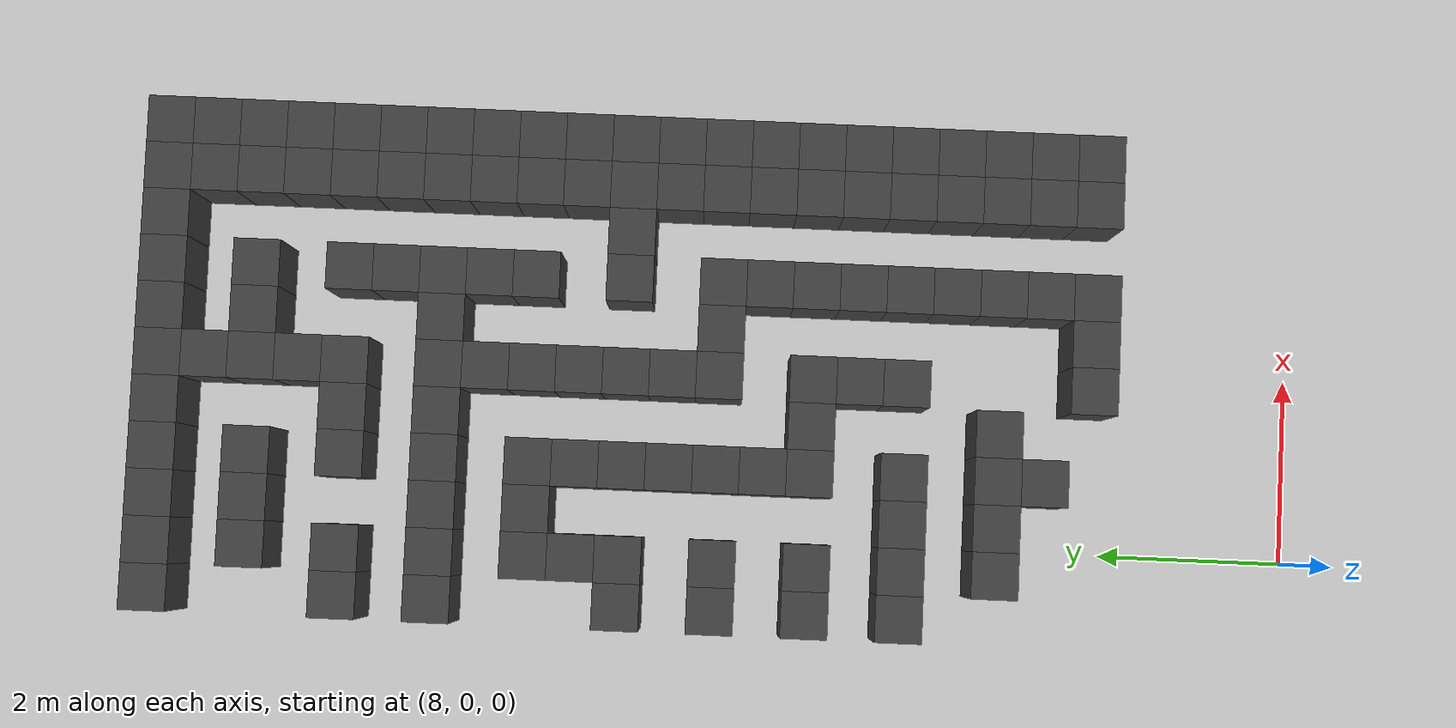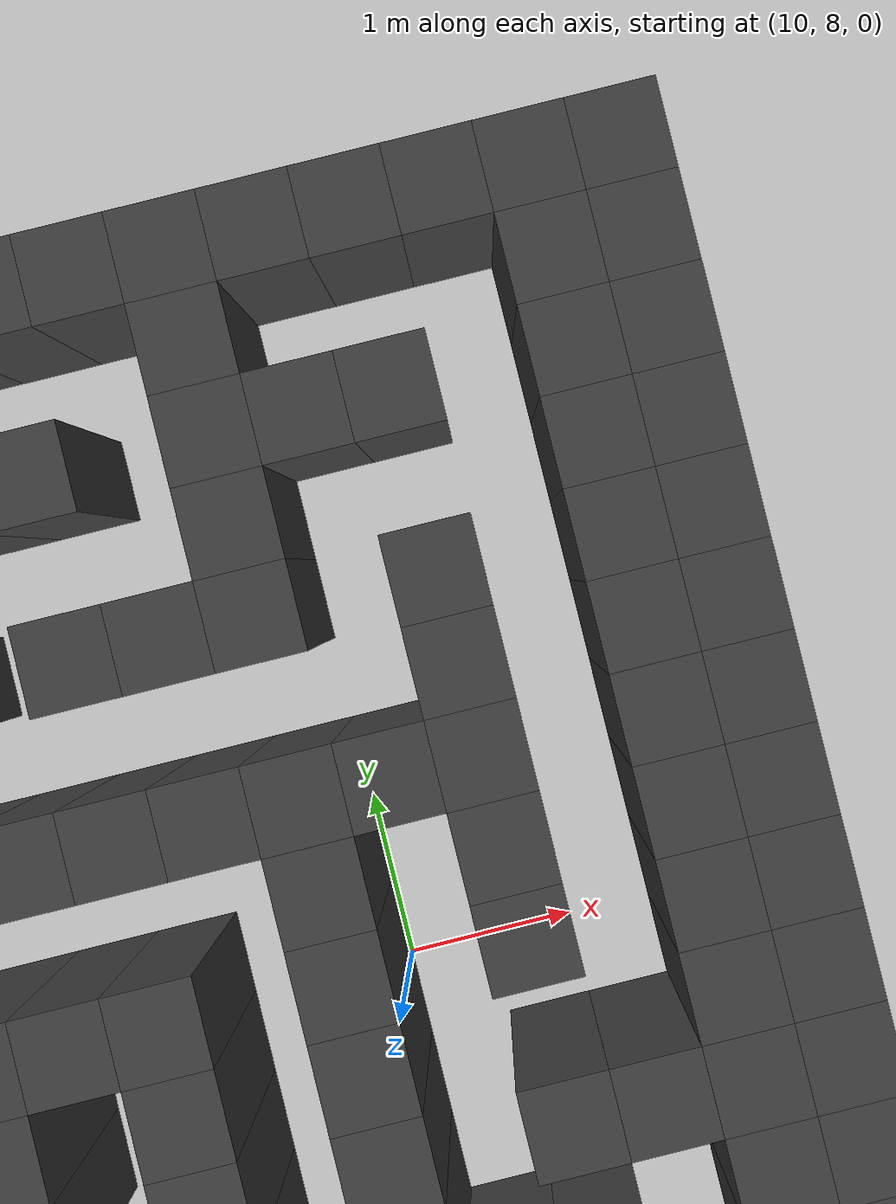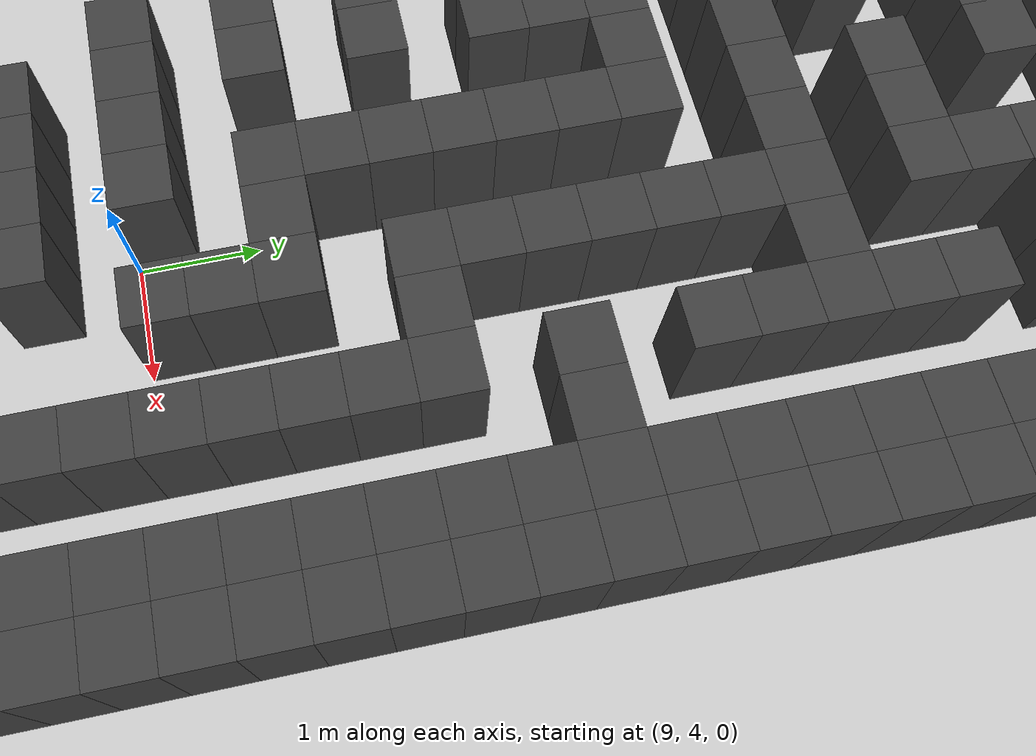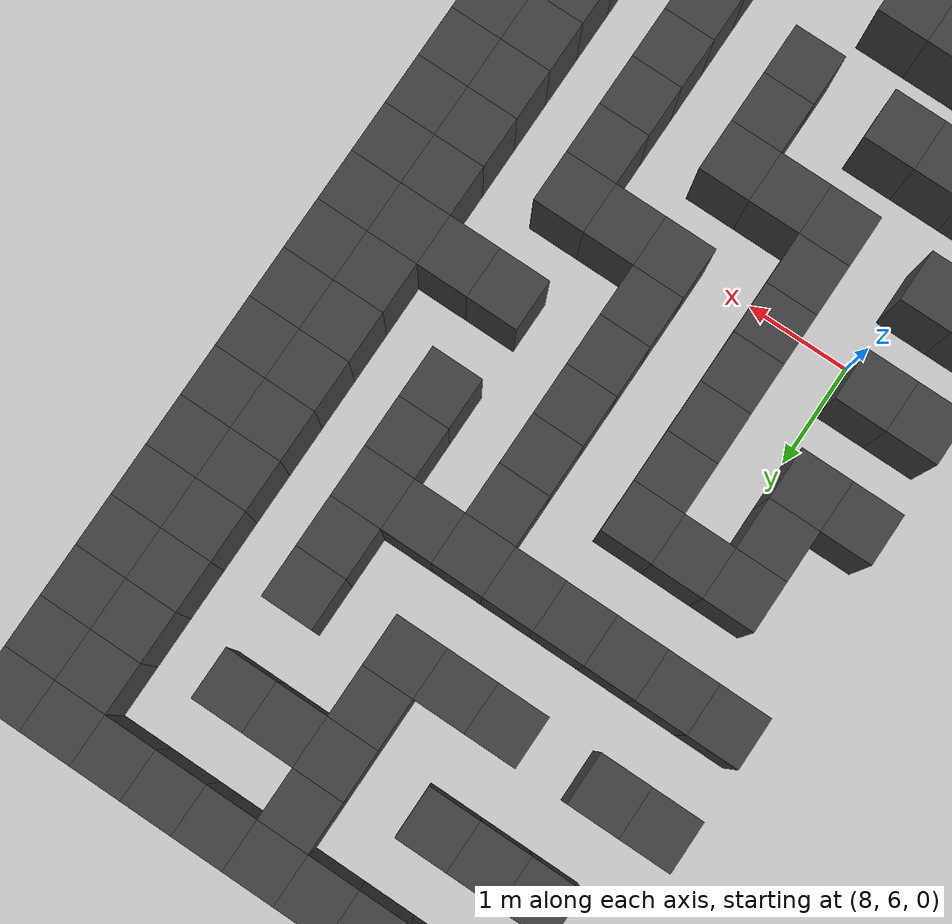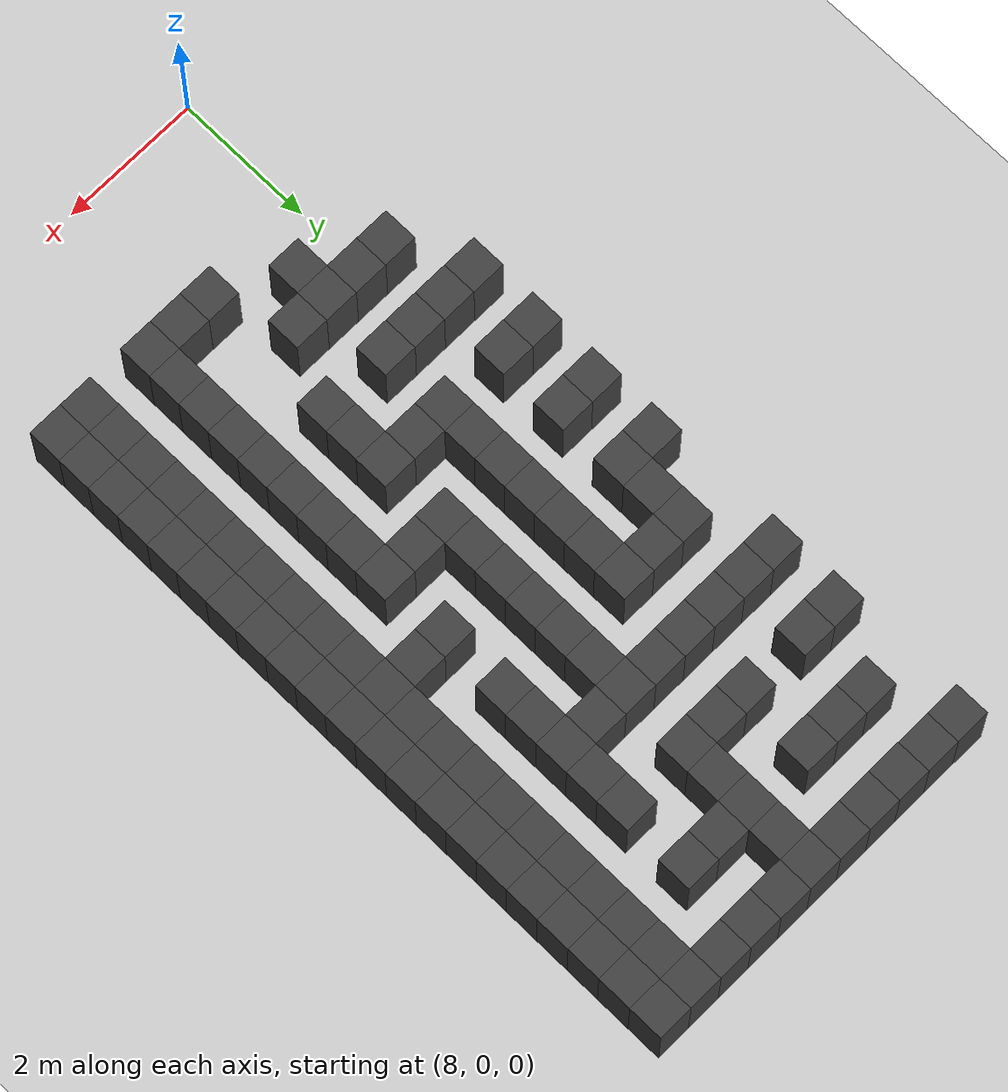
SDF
<sdf version="1.7">
 <world name="map_16884">
  <model name="ground_plane">
   <static>true</static>
   <link name="link">
    <collision name="collision">
     <geometry><plane><normal>0 0 1</normal><size>200 200</size></plane></geometry>
    </collision>
    <visual name="visual">
     <geometry><plane><normal>0 0 1</normal><size>200 200</size></plane></geometry>
     <material><ambient>0.8 0.8 0.8 1</ambient><diffuse>0.8 0.8 0.8 1</diffuse></material>
    </visual>
   </link>
  </model>
  <model name="maze_environment">
   <static>true</static>
   <link name="wall_39">
    <pose>7.250 12.250 0.500 0 0 0</pose>
    <collision name="col"><geometry><box><size>0.5 0.5 1.0</size></box></geometry></collision>
    <visual name="vis">
     <geometry><box><size>0.5 0.5 1.0</size></box></geometry>
     <material><ambient>0.15 0.15 0.15 1</ambient><diffuse>0.25 0.25 0.25 1</diffuse></material>
    </visual>
   </link>
   <link name="wall_40">
    <pose>7.750 12.250 0.500 0 0 0</pose>
    <collision name="col"><geometry><box><size>0.5 0.5 1.0</size></box></geometry></collision>
    <visual name="vis">
     <geometry><box><size>0.5 0.5 1.0</size></box></geometry>
     <material><ambient>0.15 0.15 0.15 1</ambient><diffuse>0.25 0.25 0.25 1</diffuse></material>
    </visual>
   </link>
   <link name="wall_41">
    <pose>8.250 12.250 0.500 0 0 0</pose>
    <collision name="col"><geometry><box><size>0.5 0.5 1.0</size></box></geometry></collision>
    <visual name="vis">
     <geometry><box><size>0.5 0.5 1.0</size></box></geometry>
     <material><ambient>0.15 0.15 0.15 1</ambient><diffuse>0.25 0.25 0.25 1</diffuse></material>
    </visual>
   </link>
   <link name="wall_42">
    <pose>8.750 12.250 0.500 0 0 0</pose>
    <collision name="col"><geometry><box><size>0.5 0.5 1.0</size></box></geometry></collision>
    <visual name="vis">
     <geometry><box><size>0.5 0.5 1.0</size></box></geometry>
     <material><ambient>0.15 0.15 0.15 1</ambient><diffuse>0.25 0.25 0.25 1</diffuse></material>
    </visual>
   </link>
   <link name="wall_43">
    <pose>9.250 12.250 0.500 0 0 0</pose>
    <collision name="col"><geometry><box><size>0.5 0.5 1.0</size></box></geometry></collision>
    <visual name="vis">
     <geometry><box><size>0.5 0.5 1.0</size></box></geometry>
     <material><ambient>0.15 0.15 0.15 1</ambient><diffuse>0.25 0.25 0.25 1</diffuse></material>
    </visual>
   </link>
   <link name="wall_44">
    <pose>9.750 12.250 0.500 0 0 0</pose>
    <collision name="col"><geometry><box><size>0.5 0.5 1.0</size></box></geometry></collision>
    <visual name="vis">
     <geometry><box><size>0.5 0.5 1.0</size></box></geometry>
     <material><ambient>0.15 0.15 0.15 1</ambient><diffuse>0.25 0.25 0.25 1</diffuse></material>
    </visual>
   </link>
   <link name="wall_45">
    <pose>10.250 12.250 0.500 0 0 0</pose>
    <collision name="col"><geometry><box><size>0.5 0.5 1.0</size></box></geometry></collision>
    <visual name="vis">
     <geometry><box><size>0.5 0.5 1.0</size></box></geometry>
     <material><ambient>0.15 0.15 0.15 1</ambient><diffuse>0.25 0.25 0.25 1</diffuse></material>
    </visual>
   </link>
   <link name="wall_46">
    <pose>10.750 12.250 0.500 0 0 0</pose>
    <collision name="col"><geometry><box><size>0.5 0.5 1.0</size></box></geometry></collision>
    <visual name="vis">
     <geometry><box><size>0.5 0.5 1.0</size></box></geometry>
     <material><ambient>0.15 0.15 0.15 1</ambient><diffuse>0.25 0.25 0.25 1</diffuse></material>
    </visual>
   </link>
   <link name="wall_47">
    <pose>11.250 12.250 0.500 0 0 0</pose>
    <collision name="col"><geometry><box><size>0.5 0.5 1.0</size></box></geometry></collision>
    <visual name="vis">
     <geometry><box><size>0.5 0.5 1.0</size></box></geometry>
     <material><ambient>0.15 0.15 0.15 1</ambient><diffuse>0.25 0.25 0.25 1</diffuse></material>
    </visual>
   </link>
   <link name="wall_48">
    <pose>11.750 12.250 0.500 0 0 0</pose>
    <collision name="col"><geometry><box><size>0.5 0.5 1.0</size></box></geometry></collision>
    <visual name="vis">
     <geometry><box><size>0.5 0.5 1.0</size></box></geometry>
     <material><ambient>0.15 0.15 0.15 1</ambient><diffuse>0.25 0.25 0.25 1</diffuse></material>
    </visual>
   </link>
   <link name="wall_49">
    <pose>12.250 12.250 0.500 0 0 0</pose>
    <collision name="col"><geometry><box><size>0.5 0.5 1.0</size></box></geometry></collision>
    <visual name="vis">
     <geometry><box><size>0.5 0.5 1.0</size></box></geometry>
     <material><ambient>0.15 0.15 0.15 1</ambient><diffuse>0.25 0.25 0.25 1</diffuse></material>
    </visual>
   </link>
   <link name="wall_55">
    <pose>9.750 11.750 0.500 0 0 0</pose>
    <collision name="col"><geometry><box><size>0.5 0.5 1.0</size></box></geometry></collision>
    <visual name="vis">
     <geometry><box><size>0.5 0.5 1.0</size></box></geometry>
     <material><ambient>0.15 0.15 0.15 1</ambient><diffuse>0.25 0.25 0.25 1</diffuse></material>
    </visual>
   </link>
   <link name="wall_56">
    <pose>11.750 11.750 0.500 0 0 0</pose>
    <collision name="col"><geometry><box><size>0.5 0.5 1.0</size></box></geometry></collision>
    <visual name="vis">
     <geometry><box><size>0.5 0.5 1.0</size></box></geometry>
     <material><ambient>0.15 0.15 0.15 1</ambient><diffuse>0.25 0.25 0.25 1</diffuse></material>
    </visual>
   </link>
   <link name="wall_57">
    <pose>12.250 11.750 0.500 0 0 0</pose>
    <collision name="col"><geometry><box><size>0.5 0.5 1.0</size></box></geometry></collision>
    <visual name="vis">
     <geometry><box><size>0.5 0.5 1.0</size></box></geometry>
     <material><ambient>0.15 0.15 0.15 1</ambient><diffuse>0.25 0.25 0.25 1</diffuse></material>
    </visual>
   </link>
   <link name="wall_86">
    <pose>7.750 11.250 0.500 0 0 0</pose>
    <collision name="col"><geometry><box><size>0.5 0.5 1.0</size></box></geometry></collision>
    <visual name="vis">
     <geometry><box><size>0.5 0.5 1.0</size></box></geometry>
     <material><ambient>0.15 0.15 0.15 1</ambient><diffuse>0.25 0.25 0.25 1</diffuse></material>
    </visual>
   </link>
   <link name="wall_87">
    <pose>8.250 11.250 0.500 0 0 0</pose>
    <collision name="col"><geometry><box><size>0.5 0.5 1.0</size></box></geometry></collision>
    <visual name="vis">
     <geometry><box><size>0.5 0.5 1.0</size></box></geometry>
     <material><ambient>0.15 0.15 0.15 1</ambient><diffuse>0.25 0.25 0.25 1</diffuse></material>
    </visual>
   </link>
   <link name="wall_88">
    <pose>8.750 11.250 0.500 0 0 0</pose>
    <collision name="col"><geometry><box><size>0.5 0.5 1.0</size></box></geometry></collision>
    <visual name="vis">
     <geometry><box><size>0.5 0.5 1.0</size></box></geometry>
     <material><ambient>0.15 0.15 0.15 1</ambient><diffuse>0.25 0.25 0.25 1</diffuse></material>
    </visual>
   </link>
   <link name="wall_89">
    <pose>9.750 11.250 0.500 0 0 0</pose>
    <collision name="col"><geometry><box><size>0.5 0.5 1.0</size></box></geometry></collision>
    <visual name="vis">
     <geometry><box><size>0.5 0.5 1.0</size></box></geometry>
     <material><ambient>0.15 0.15 0.15 1</ambient><diffuse>0.25 0.25 0.25 1</diffuse></material>
    </visual>
   </link>
   <link name="wall_90">
    <pose>10.250 11.250 0.500 0 0 0</pose>
    <collision name="col"><geometry><box><size>0.5 0.5 1.0</size></box></geometry></collision>
    <visual name="vis">
     <geometry><box><size>0.5 0.5 1.0</size></box></geometry>
     <material><ambient>0.15 0.15 0.15 1</ambient><diffuse>0.25 0.25 0.25 1</diffuse></material>
    </visual>
   </link>
   <link name="wall_91">
    <pose>10.750 11.250 0.500 0 0 0</pose>
    <collision name="col"><geometry><box><size>0.5 0.5 1.0</size></box></geometry></collision>
    <visual name="vis">
     <geometry><box><size>0.5 0.5 1.0</size></box></geometry>
     <material><ambient>0.15 0.15 0.15 1</ambient><diffuse>0.25 0.25 0.25 1</diffuse></material>
    </visual>
   </link>
   <link name="wall_92">
    <pose>11.750 11.250 0.500 0 0 0</pose>
    <collision name="col"><geometry><box><size>0.5 0.5 1.0</size></box></geometry></collision>
    <visual name="vis">
     <geometry><box><size>0.5 0.5 1.0</size></box></geometry>
     <material><ambient>0.15 0.15 0.15 1</ambient><diffuse>0.25 0.25 0.25 1</diffuse></material>
    </visual>
   </link>
   <link name="wall_93">
    <pose>12.250 11.250 0.500 0 0 0</pose>
    <collision name="col"><geometry><box><size>0.5 0.5 1.0</size></box></geometry></collision>
    <visual name="vis">
     <geometry><box><size>0.5 0.5 1.0</size></box></geometry>
     <material><ambient>0.15 0.15 0.15 1</ambient><diffuse>0.25 0.25 0.25 1</diffuse></material>
    </visual>
   </link>
   <link name="wall_104">
    <pose>9.750 10.750 0.500 0 0 0</pose>
    <collision name="col"><geometry><box><size>0.5 0.5 1.0</size></box></geometry></collision>
    <visual name="vis">
     <geometry><box><size>0.5 0.5 1.0</size></box></geometry>
     <material><ambient>0.15 0.15 0.15 1</ambient><diffuse>0.25 0.25 0.25 1</diffuse></material>
    </visual>
   </link>
   <link name="wall_105">
    <pose>11.750 10.750 0.500 0 0 0</pose>
    <collision name="col"><geometry><box><size>0.5 0.5 1.0</size></box></geometry></collision>
    <visual name="vis">
     <geometry><box><size>0.5 0.5 1.0</size></box></geometry>
     <material><ambient>0.15 0.15 0.15 1</ambient><diffuse>0.25 0.25 0.25 1</diffuse></material>
    </visual>
   </link>
   <link name="wall_106">
    <pose>12.250 10.750 0.500 0 0 0</pose>
    <collision name="col"><geometry><box><size>0.5 0.5 1.0</size></box></geometry></collision>
    <visual name="vis">
     <geometry><box><size>0.5 0.5 1.0</size></box></geometry>
     <material><ambient>0.15 0.15 0.15 1</ambient><diffuse>0.25 0.25 0.25 1</diffuse></material>
    </visual>
   </link>
   <link name="wall_134">
    <pose>7.250 10.250 0.500 0 0 0</pose>
    <collision name="col"><geometry><box><size>0.5 0.5 1.0</size></box></geometry></collision>
    <visual name="vis">
     <geometry><box><size>0.5 0.5 1.0</size></box></geometry>
     <material><ambient>0.15 0.15 0.15 1</ambient><diffuse>0.25 0.25 0.25 1</diffuse></material>
    </visual>
   </link>
   <link name="wall_135">
    <pose>7.750 10.250 0.500 0 0 0</pose>
    <collision name="col"><geometry><box><size>0.5 0.5 1.0</size></box></geometry></collision>
    <visual name="vis">
     <geometry><box><size>0.5 0.5 1.0</size></box></geometry>
     <material><ambient>0.15 0.15 0.15 1</ambient><diffuse>0.25 0.25 0.25 1</diffuse></material>
    </visual>
   </link>
   <link name="wall_136">
    <pose>8.750 10.250 0.500 0 0 0</pose>
    <collision name="col"><geometry><box><size>0.5 0.5 1.0</size></box></geometry></collision>
    <visual name="vis">
     <geometry><box><size>0.5 0.5 1.0</size></box></geometry>
     <material><ambient>0.15 0.15 0.15 1</ambient><diffuse>0.25 0.25 0.25 1</diffuse></material>
    </visual>
   </link>
   <link name="wall_137">
    <pose>9.250 10.250 0.500 0 0 0</pose>
    <collision name="col"><geometry><box><size>0.5 0.5 1.0</size></box></geometry></collision>
    <visual name="vis">
     <geometry><box><size>0.5 0.5 1.0</size></box></geometry>
     <material><ambient>0.15 0.15 0.15 1</ambient><diffuse>0.25 0.25 0.25 1</diffuse></material>
    </visual>
   </link>
   <link name="wall_138">
    <pose>9.750 10.250 0.500 0 0 0</pose>
    <collision name="col"><geometry><box><size>0.5 0.5 1.0</size></box></geometry></collision>
    <visual name="vis">
     <geometry><box><size>0.5 0.5 1.0</size></box></geometry>
     <material><ambient>0.15 0.15 0.15 1</ambient><diffuse>0.25 0.25 0.25 1</diffuse></material>
    </visual>
   </link>
   <link name="wall_139">
    <pose>10.750 10.250 0.500 0 0 0</pose>
    <collision name="col"><geometry><box><size>0.5 0.5 1.0</size></box></geometry></collision>
    <visual name="vis">
     <geometry><box><size>0.5 0.5 1.0</size></box></geometry>
     <material><ambient>0.15 0.15 0.15 1</ambient><diffuse>0.25 0.25 0.25 1</diffuse></material>
    </visual>
   </link>
   <link name="wall_140">
    <pose>11.750 10.250 0.500 0 0 0</pose>
    <collision name="col"><geometry><box><size>0.5 0.5 1.0</size></box></geometry></collision>
    <visual name="vis">
     <geometry><box><size>0.5 0.5 1.0</size></box></geometry>
     <material><ambient>0.15 0.15 0.15 1</ambient><diffuse>0.25 0.25 0.25 1</diffuse></material>
    </visual>
   </link>
   <link name="wall_141">
    <pose>12.250 10.250 0.500 0 0 0</pose>
    <collision name="col"><geometry><box><size>0.5 0.5 1.0</size></box></geometry></collision>
    <visual name="vis">
     <geometry><box><size>0.5 0.5 1.0</size></box></geometry>
     <material><ambient>0.15 0.15 0.15 1</ambient><diffuse>0.25 0.25 0.25 1</diffuse></material>
    </visual>
   </link>
   <link name="wall_155">
    <pose>10.750 9.750 0.500 0 0 0</pose>
    <collision name="col"><geometry><box><size>0.5 0.5 1.0</size></box></geometry></collision>
    <visual name="vis">
     <geometry><box><size>0.5 0.5 1.0</size></box></geometry>
     <material><ambient>0.15 0.15 0.15 1</ambient><diffuse>0.25 0.25 0.25 1</diffuse></material>
    </visual>
   </link>
   <link name="wall_156">
    <pose>11.750 9.750 0.500 0 0 0</pose>
    <collision name="col"><geometry><box><size>0.5 0.5 1.0</size></box></geometry></collision>
    <visual name="vis">
     <geometry><box><size>0.5 0.5 1.0</size></box></geometry>
     <material><ambient>0.15 0.15 0.15 1</ambient><diffuse>0.25 0.25 0.25 1</diffuse></material>
    </visual>
   </link>
   <link name="wall_157">
    <pose>12.250 9.750 0.500 0 0 0</pose>
    <collision name="col"><geometry><box><size>0.5 0.5 1.0</size></box></geometry></collision>
    <visual name="vis">
     <geometry><box><size>0.5 0.5 1.0</size></box></geometry>
     <material><ambient>0.15 0.15 0.15 1</ambient><diffuse>0.25 0.25 0.25 1</diffuse></material>
    </visual>
   </link>
   <link name="wall_184">
    <pose>7.250 9.250 0.500 0 0 0</pose>
    <collision name="col"><geometry><box><size>0.5 0.5 1.0</size></box></geometry></collision>
    <visual name="vis">
     <geometry><box><size>0.5 0.5 1.0</size></box></geometry>
     <material><ambient>0.15 0.15 0.15 1</ambient><diffuse>0.25 0.25 0.25 1</diffuse></material>
    </visual>
   </link>
   <link name="wall_185">
    <pose>7.750 9.250 0.500 0 0 0</pose>
    <collision name="col"><geometry><box><size>0.5 0.5 1.0</size></box></geometry></collision>
    <visual name="vis">
     <geometry><box><size>0.5 0.5 1.0</size></box></geometry>
     <material><ambient>0.15 0.15 0.15 1</ambient><diffuse>0.25 0.25 0.25 1</diffuse></material>
    </visual>
   </link>
   <link name="wall_186">
    <pose>8.250 9.250 0.500 0 0 0</pose>
    <collision name="col"><geometry><box><size>0.5 0.5 1.0</size></box></geometry></collision>
    <visual name="vis">
     <geometry><box><size>0.5 0.5 1.0</size></box></geometry>
     <material><ambient>0.15 0.15 0.15 1</ambient><diffuse>0.25 0.25 0.25 1</diffuse></material>
    </visual>
   </link>
   <link name="wall_187">
    <pose>8.750 9.250 0.500 0 0 0</pose>
    <collision name="col"><geometry><box><size>0.5 0.5 1.0</size></box></geometry></collision>
    <visual name="vis">
     <geometry><box><size>0.5 0.5 1.0</size></box></geometry>
     <material><ambient>0.15 0.15 0.15 1</ambient><diffuse>0.25 0.25 0.25 1</diffuse></material>
    </visual>
   </link>
   <link name="wall_188">
    <pose>9.250 9.250 0.500 0 0 0</pose>
    <collision name="col"><geometry><box><size>0.5 0.5 1.0</size></box></geometry></collision>
    <visual name="vis">
     <geometry><box><size>0.5 0.5 1.0</size></box></geometry>
     <material><ambient>0.15 0.15 0.15 1</ambient><diffuse>0.25 0.25 0.25 1</diffuse></material>
    </visual>
   </link>
   <link name="wall_189">
    <pose>9.750 9.250 0.500 0 0 0</pose>
    <collision name="col"><geometry><box><size>0.5 0.5 1.0</size></box></geometry></collision>
    <visual name="vis">
     <geometry><box><size>0.5 0.5 1.0</size></box></geometry>
     <material><ambient>0.15 0.15 0.15 1</ambient><diffuse>0.25 0.25 0.25 1</diffuse></material>
    </visual>
   </link>
   <link name="wall_190">
    <pose>10.250 9.250 0.500 0 0 0</pose>
    <collision name="col"><geometry><box><size>0.5 0.5 1.0</size></box></geometry></collision>
    <visual name="vis">
     <geometry><box><size>0.5 0.5 1.0</size></box></geometry>
     <material><ambient>0.15 0.15 0.15 1</ambient><diffuse>0.25 0.25 0.25 1</diffuse></material>
    </visual>
   </link>
   <link name="wall_191">
    <pose>10.750 9.250 0.500 0 0 0</pose>
    <collision name="col"><geometry><box><size>0.5 0.5 1.0</size></box></geometry></collision>
    <visual name="vis">
     <geometry><box><size>0.5 0.5 1.0</size></box></geometry>
     <material><ambient>0.15 0.15 0.15 1</ambient><diffuse>0.25 0.25 0.25 1</diffuse></material>
    </visual>
   </link>
   <link name="wall_192">
    <pose>11.750 9.250 0.500 0 0 0</pose>
    <collision name="col"><geometry><box><size>0.5 0.5 1.0</size></box></geometry></collision>
    <visual name="vis">
     <geometry><box><size>0.5 0.5 1.0</size></box></geometry>
     <material><ambient>0.15 0.15 0.15 1</ambient><diffuse>0.25 0.25 0.25 1</diffuse></material>
    </visual>
   </link>
   <link name="wall_193">
    <pose>12.250 9.250 0.500 0 0 0</pose>
    <collision name="col"><geometry><box><size>0.5 0.5 1.0</size></box></geometry></collision>
    <visual name="vis">
     <geometry><box><size>0.5 0.5 1.0</size></box></geometry>
     <material><ambient>0.15 0.15 0.15 1</ambient><diffuse>0.25 0.25 0.25 1</diffuse></material>
    </visual>
   </link>
   <link name="wall_203">
    <pose>9.750 8.750 0.500 0 0 0</pose>
    <collision name="col"><geometry><box><size>0.5 0.5 1.0</size></box></geometry></collision>
    <visual name="vis">
     <geometry><box><size>0.5 0.5 1.0</size></box></geometry>
     <material><ambient>0.15 0.15 0.15 1</ambient><diffuse>0.25 0.25 0.25 1</diffuse></material>
    </visual>
   </link>
   <link name="wall_204">
    <pose>10.750 8.750 0.500 0 0 0</pose>
    <collision name="col"><geometry><box><size>0.5 0.5 1.0</size></box></geometry></collision>
    <visual name="vis">
     <geometry><box><size>0.5 0.5 1.0</size></box></geometry>
     <material><ambient>0.15 0.15 0.15 1</ambient><diffuse>0.25 0.25 0.25 1</diffuse></material>
    </visual>
   </link>
   <link name="wall_205">
    <pose>11.750 8.750 0.500 0 0 0</pose>
    <collision name="col"><geometry><box><size>0.5 0.5 1.0</size></box></geometry></collision>
    <visual name="vis">
     <geometry><box><size>0.5 0.5 1.0</size></box></geometry>
     <material><ambient>0.15 0.15 0.15 1</ambient><diffuse>0.25 0.25 0.25 1</diffuse></material>
    </visual>
   </link>
   <link name="wall_206">
    <pose>12.250 8.750 0.500 0 0 0</pose>
    <collision name="col"><geometry><box><size>0.5 0.5 1.0</size></box></geometry></collision>
    <visual name="vis">
     <geometry><box><size>0.5 0.5 1.0</size></box></geometry>
     <material><ambient>0.15 0.15 0.15 1</ambient><diffuse>0.25 0.25 0.25 1</diffuse></material>
    </visual>
   </link>
   <link name="wall_234">
    <pose>7.750 8.250 0.500 0 0 0</pose>
    <collision name="col"><geometry><box><size>0.5 0.5 1.0</size></box></geometry></collision>
    <visual name="vis">
     <geometry><box><size>0.5 0.5 1.0</size></box></geometry>
     <material><ambient>0.15 0.15 0.15 1</ambient><diffuse>0.25 0.25 0.25 1</diffuse></material>
    </visual>
   </link>
   <link name="wall_235">
    <pose>8.250 8.250 0.500 0 0 0</pose>
    <collision name="col"><geometry><box><size>0.5 0.5 1.0</size></box></geometry></collision>
    <visual name="vis">
     <geometry><box><size>0.5 0.5 1.0</size></box></geometry>
     <material><ambient>0.15 0.15 0.15 1</ambient><diffuse>0.25 0.25 0.25 1</diffuse></material>
    </visual>
   </link>
   <link name="wall_236">
    <pose>8.750 8.250 0.500 0 0 0</pose>
    <collision name="col"><geometry><box><size>0.5 0.5 1.0</size></box></geometry></collision>
    <visual name="vis">
     <geometry><box><size>0.5 0.5 1.0</size></box></geometry>
     <material><ambient>0.15 0.15 0.15 1</ambient><diffuse>0.25 0.25 0.25 1</diffuse></material>
    </visual>
   </link>
   <link name="wall_237">
    <pose>9.750 8.250 0.500 0 0 0</pose>
    <collision name="col"><geometry><box><size>0.5 0.5 1.0</size></box></geometry></collision>
    <visual name="vis">
     <geometry><box><size>0.5 0.5 1.0</size></box></geometry>
     <material><ambient>0.15 0.15 0.15 1</ambient><diffuse>0.25 0.25 0.25 1</diffuse></material>
    </visual>
   </link>
   <link name="wall_238">
    <pose>10.750 8.250 0.500 0 0 0</pose>
    <collision name="col"><geometry><box><size>0.5 0.5 1.0</size></box></geometry></collision>
    <visual name="vis">
     <geometry><box><size>0.5 0.5 1.0</size></box></geometry>
     <material><ambient>0.15 0.15 0.15 1</ambient><diffuse>0.25 0.25 0.25 1</diffuse></material>
    </visual>
   </link>
   <link name="wall_239">
    <pose>11.750 8.250 0.500 0 0 0</pose>
    <collision name="col"><geometry><box><size>0.5 0.5 1.0</size></box></geometry></collision>
    <visual name="vis">
     <geometry><box><size>0.5 0.5 1.0</size></box></geometry>
     <material><ambient>0.15 0.15 0.15 1</ambient><diffuse>0.25 0.25 0.25 1</diffuse></material>
    </visual>
   </link>
   <link name="wall_240">
    <pose>12.250 8.250 0.500 0 0 0</pose>
    <collision name="col"><geometry><box><size>0.5 0.5 1.0</size></box></geometry></collision>
    <visual name="vis">
     <geometry><box><size>0.5 0.5 1.0</size></box></geometry>
     <material><ambient>0.15 0.15 0.15 1</ambient><diffuse>0.25 0.25 0.25 1</diffuse></material>
    </visual>
   </link>
   <link name="wall_251">
    <pose>7.750 7.750 0.500 0 0 0</pose>
    <collision name="col"><geometry><box><size>0.5 0.5 1.0</size></box></geometry></collision>
    <visual name="vis">
     <geometry><box><size>0.5 0.5 1.0</size></box></geometry>
     <material><ambient>0.15 0.15 0.15 1</ambient><diffuse>0.25 0.25 0.25 1</diffuse></material>
    </visual>
   </link>
   <link name="wall_252">
    <pose>8.750 7.750 0.500 0 0 0</pose>
    <collision name="col"><geometry><box><size>0.5 0.5 1.0</size></box></geometry></collision>
    <visual name="vis">
     <geometry><box><size>0.5 0.5 1.0</size></box></geometry>
     <material><ambient>0.15 0.15 0.15 1</ambient><diffuse>0.25 0.25 0.25 1</diffuse></material>
    </visual>
   </link>
   <link name="wall_253">
    <pose>9.750 7.750 0.500 0 0 0</pose>
    <collision name="col"><geometry><box><size>0.5 0.5 1.0</size></box></geometry></collision>
    <visual name="vis">
     <geometry><box><size>0.5 0.5 1.0</size></box></geometry>
     <material><ambient>0.15 0.15 0.15 1</ambient><diffuse>0.25 0.25 0.25 1</diffuse></material>
    </visual>
   </link>
   <link name="wall_254">
    <pose>11.750 7.750 0.500 0 0 0</pose>
    <collision name="col"><geometry><box><size>0.5 0.5 1.0</size></box></geometry></collision>
    <visual name="vis">
     <geometry><box><size>0.5 0.5 1.0</size></box></geometry>
     <material><ambient>0.15 0.15 0.15 1</ambient><diffuse>0.25 0.25 0.25 1</diffuse></material>
    </visual>
   </link>
   <link name="wall_255">
    <pose>12.250 7.750 0.500 0 0 0</pose>
    <collision name="col"><geometry><box><size>0.5 0.5 1.0</size></box></geometry></collision>
    <visual name="vis">
     <geometry><box><size>0.5 0.5 1.0</size></box></geometry>
     <material><ambient>0.15 0.15 0.15 1</ambient><diffuse>0.25 0.25 0.25 1</diffuse></material>
    </visual>
   </link>
   <link name="wall_283">
    <pose>7.250 7.250 0.500 0 0 0</pose>
    <collision name="col"><geometry><box><size>0.5 0.5 1.0</size></box></geometry></collision>
    <visual name="vis">
     <geometry><box><size>0.5 0.5 1.0</size></box></geometry>
     <material><ambient>0.15 0.15 0.15 1</ambient><diffuse>0.25 0.25 0.25 1</diffuse></material>
    </visual>
   </link>
   <link name="wall_284">
    <pose>7.750 7.250 0.500 0 0 0</pose>
    <collision name="col"><geometry><box><size>0.5 0.5 1.0</size></box></geometry></collision>
    <visual name="vis">
     <geometry><box><size>0.5 0.5 1.0</size></box></geometry>
     <material><ambient>0.15 0.15 0.15 1</ambient><diffuse>0.25 0.25 0.25 1</diffuse></material>
    </visual>
   </link>
   <link name="wall_285">
    <pose>8.750 7.250 0.500 0 0 0</pose>
    <collision name="col"><geometry><box><size>0.5 0.5 1.0</size></box></geometry></collision>
    <visual name="vis">
     <geometry><box><size>0.5 0.5 1.0</size></box></geometry>
     <material><ambient>0.15 0.15 0.15 1</ambient><diffuse>0.25 0.25 0.25 1</diffuse></material>
    </visual>
   </link>
   <link name="wall_286">
    <pose>9.750 7.250 0.500 0 0 0</pose>
    <collision name="col"><geometry><box><size>0.5 0.5 1.0</size></box></geometry></collision>
    <visual name="vis">
     <geometry><box><size>0.5 0.5 1.0</size></box></geometry>
     <material><ambient>0.15 0.15 0.15 1</ambient><diffuse>0.25 0.25 0.25 1</diffuse></material>
    </visual>
   </link>
   <link name="wall_287">
    <pose>10.750 7.250 0.500 0 0 0</pose>
    <collision name="col"><geometry><box><size>0.5 0.5 1.0</size></box></geometry></collision>
    <visual name="vis">
     <geometry><box><size>0.5 0.5 1.0</size></box></geometry>
     <material><ambient>0.15 0.15 0.15 1</ambient><diffuse>0.25 0.25 0.25 1</diffuse></material>
    </visual>
   </link>
   <link name="wall_288">
    <pose>11.250 7.250 0.500 0 0 0</pose>
    <collision name="col"><geometry><box><size>0.5 0.5 1.0</size></box></geometry></collision>
    <visual name="vis">
     <geometry><box><size>0.5 0.5 1.0</size></box></geometry>
     <material><ambient>0.15 0.15 0.15 1</ambient><diffuse>0.25 0.25 0.25 1</diffuse></material>
    </visual>
   </link>
   <link name="wall_289">
    <pose>11.750 7.250 0.500 0 0 0</pose>
    <collision name="col"><geometry><box><size>0.5 0.5 1.0</size></box></geometry></collision>
    <visual name="vis">
     <geometry><box><size>0.5 0.5 1.0</size></box></geometry>
     <material><ambient>0.15 0.15 0.15 1</ambient><diffuse>0.25 0.25 0.25 1</diffuse></material>
    </visual>
   </link>
   <link name="wall_290">
    <pose>12.250 7.250 0.500 0 0 0</pose>
    <collision name="col"><geometry><box><size>0.5 0.5 1.0</size></box></geometry></collision>
    <visual name="vis">
     <geometry><box><size>0.5 0.5 1.0</size></box></geometry>
     <material><ambient>0.15 0.15 0.15 1</ambient><diffuse>0.25 0.25 0.25 1</diffuse></material>
    </visual>
   </link>
   <link name="wall_301">
    <pose>8.750 6.750 0.500 0 0 0</pose>
    <collision name="col"><geometry><box><size>0.5 0.5 1.0</size></box></geometry></collision>
    <visual name="vis">
     <geometry><box><size>0.5 0.5 1.0</size></box></geometry>
     <material><ambient>0.15 0.15 0.15 1</ambient><diffuse>0.25 0.25 0.25 1</diffuse></material>
    </visual>
   </link>
   <link name="wall_302">
    <pose>9.750 6.750 0.500 0 0 0</pose>
    <collision name="col"><geometry><box><size>0.5 0.5 1.0</size></box></geometry></collision>
    <visual name="vis">
     <geometry><box><size>0.5 0.5 1.0</size></box></geometry>
     <material><ambient>0.15 0.15 0.15 1</ambient><diffuse>0.25 0.25 0.25 1</diffuse></material>
    </visual>
   </link>
   <link name="wall_303">
    <pose>11.750 6.750 0.500 0 0 0</pose>
    <collision name="col"><geometry><box><size>0.5 0.5 1.0</size></box></geometry></collision>
    <visual name="vis">
     <geometry><box><size>0.5 0.5 1.0</size></box></geometry>
     <material><ambient>0.15 0.15 0.15 1</ambient><diffuse>0.25 0.25 0.25 1</diffuse></material>
    </visual>
   </link>
   <link name="wall_304">
    <pose>12.250 6.750 0.500 0 0 0</pose>
    <collision name="col"><geometry><box><size>0.5 0.5 1.0</size></box></geometry></collision>
    <visual name="vis">
     <geometry><box><size>0.5 0.5 1.0</size></box></geometry>
     <material><ambient>0.15 0.15 0.15 1</ambient><diffuse>0.25 0.25 0.25 1</diffuse></material>
    </visual>
   </link>
   <link name="wall_327">
    <pose>7.250 6.250 0.500 0 0 0</pose>
    <collision name="col"><geometry><box><size>0.5 0.5 1.0</size></box></geometry></collision>
    <visual name="vis">
     <geometry><box><size>0.5 0.5 1.0</size></box></geometry>
     <material><ambient>0.15 0.15 0.15 1</ambient><diffuse>0.25 0.25 0.25 1</diffuse></material>
    </visual>
   </link>
   <link name="wall_328">
    <pose>7.750 6.250 0.500 0 0 0</pose>
    <collision name="col"><geometry><box><size>0.5 0.5 1.0</size></box></geometry></collision>
    <visual name="vis">
     <geometry><box><size>0.5 0.5 1.0</size></box></geometry>
     <material><ambient>0.15 0.15 0.15 1</ambient><diffuse>0.25 0.25 0.25 1</diffuse></material>
    </visual>
   </link>
   <link name="wall_329">
    <pose>8.750 6.250 0.500 0 0 0</pose>
    <collision name="col"><geometry><box><size>0.5 0.5 1.0</size></box></geometry></collision>
    <visual name="vis">
     <geometry><box><size>0.5 0.5 1.0</size></box></geometry>
     <material><ambient>0.15 0.15 0.15 1</ambient><diffuse>0.25 0.25 0.25 1</diffuse></material>
    </visual>
   </link>
   <link name="wall_330">
    <pose>9.750 6.250 0.500 0 0 0</pose>
    <collision name="col"><geometry><box><size>0.5 0.5 1.0</size></box></geometry></collision>
    <visual name="vis">
     <geometry><box><size>0.5 0.5 1.0</size></box></geometry>
     <material><ambient>0.15 0.15 0.15 1</ambient><diffuse>0.25 0.25 0.25 1</diffuse></material>
    </visual>
   </link>
   <link name="wall_331">
    <pose>10.250 6.250 0.500 0 0 0</pose>
    <collision name="col"><geometry><box><size>0.5 0.5 1.0</size></box></geometry></collision>
    <visual name="vis">
     <geometry><box><size>0.5 0.5 1.0</size></box></geometry>
     <material><ambient>0.15 0.15 0.15 1</ambient><diffuse>0.25 0.25 0.25 1</diffuse></material>
    </visual>
   </link>
   <link name="wall_332">
    <pose>10.750 6.250 0.500 0 0 0</pose>
    <collision name="col"><geometry><box><size>0.5 0.5 1.0</size></box></geometry></collision>
    <visual name="vis">
     <geometry><box><size>0.5 0.5 1.0</size></box></geometry>
     <material><ambient>0.15 0.15 0.15 1</ambient><diffuse>0.25 0.25 0.25 1</diffuse></material>
    </visual>
   </link>
   <link name="wall_333">
    <pose>11.750 6.250 0.500 0 0 0</pose>
    <collision name="col"><geometry><box><size>0.5 0.5 1.0</size></box></geometry></collision>
    <visual name="vis">
     <geometry><box><size>0.5 0.5 1.0</size></box></geometry>
     <material><ambient>0.15 0.15 0.15 1</ambient><diffuse>0.25 0.25 0.25 1</diffuse></material>
    </visual>
   </link>
   <link name="wall_334">
    <pose>12.250 6.250 0.500 0 0 0</pose>
    <collision name="col"><geometry><box><size>0.5 0.5 1.0</size></box></geometry></collision>
    <visual name="vis">
     <geometry><box><size>0.5 0.5 1.0</size></box></geometry>
     <material><ambient>0.15 0.15 0.15 1</ambient><diffuse>0.25 0.25 0.25 1</diffuse></material>
    </visual>
   </link>
   <link name="wall_347">
    <pose>8.750 5.750 0.500 0 0 0</pose>
    <collision name="col"><geometry><box><size>0.5 0.5 1.0</size></box></geometry></collision>
    <visual name="vis">
     <geometry><box><size>0.5 0.5 1.0</size></box></geometry>
     <material><ambient>0.15 0.15 0.15 1</ambient><diffuse>0.25 0.25 0.25 1</diffuse></material>
    </visual>
   </link>
   <link name="wall_348">
    <pose>10.750 5.750 0.500 0 0 0</pose>
    <collision name="col"><geometry><box><size>0.5 0.5 1.0</size></box></geometry></collision>
    <visual name="vis">
     <geometry><box><size>0.5 0.5 1.0</size></box></geometry>
     <material><ambient>0.15 0.15 0.15 1</ambient><diffuse>0.25 0.25 0.25 1</diffuse></material>
    </visual>
   </link>
   <link name="wall_349">
    <pose>11.750 5.750 0.500 0 0 0</pose>
    <collision name="col"><geometry><box><size>0.5 0.5 1.0</size></box></geometry></collision>
    <visual name="vis">
     <geometry><box><size>0.5 0.5 1.0</size></box></geometry>
     <material><ambient>0.15 0.15 0.15 1</ambient><diffuse>0.25 0.25 0.25 1</diffuse></material>
    </visual>
   </link>
   <link name="wall_350">
    <pose>12.250 5.750 0.500 0 0 0</pose>
    <collision name="col"><geometry><box><size>0.5 0.5 1.0</size></box></geometry></collision>
    <visual name="vis">
     <geometry><box><size>0.5 0.5 1.0</size></box></geometry>
     <material><ambient>0.15 0.15 0.15 1</ambient><diffuse>0.25 0.25 0.25 1</diffuse></material>
    </visual>
   </link>
   <link name="wall_378">
    <pose>7.250 5.250 0.500 0 0 0</pose>
    <collision name="col"><geometry><box><size>0.5 0.5 1.0</size></box></geometry></collision>
    <visual name="vis">
     <geometry><box><size>0.5 0.5 1.0</size></box></geometry>
     <material><ambient>0.15 0.15 0.15 1</ambient><diffuse>0.25 0.25 0.25 1</diffuse></material>
    </visual>
   </link>
   <link name="wall_379">
    <pose>7.750 5.250 0.500 0 0 0</pose>
    <collision name="col"><geometry><box><size>0.5 0.5 1.0</size></box></geometry></collision>
    <visual name="vis">
     <geometry><box><size>0.5 0.5 1.0</size></box></geometry>
     <material><ambient>0.15 0.15 0.15 1</ambient><diffuse>0.25 0.25 0.25 1</diffuse></material>
    </visual>
   </link>
   <link name="wall_380">
    <pose>8.750 5.250 0.500 0 0 0</pose>
    <collision name="col"><geometry><box><size>0.5 0.5 1.0</size></box></geometry></collision>
    <visual name="vis">
     <geometry><box><size>0.5 0.5 1.0</size></box></geometry>
     <material><ambient>0.15 0.15 0.15 1</ambient><diffuse>0.25 0.25 0.25 1</diffuse></material>
    </visual>
   </link>
   <link name="wall_381">
    <pose>9.250 5.250 0.500 0 0 0</pose>
    <collision name="col"><geometry><box><size>0.5 0.5 1.0</size></box></geometry></collision>
    <visual name="vis">
     <geometry><box><size>0.5 0.5 1.0</size></box></geometry>
     <material><ambient>0.15 0.15 0.15 1</ambient><diffuse>0.25 0.25 0.25 1</diffuse></material>
    </visual>
   </link>
   <link name="wall_382">
    <pose>9.750 5.250 0.500 0 0 0</pose>
    <collision name="col"><geometry><box><size>0.5 0.5 1.0</size></box></geometry></collision>
    <visual name="vis">
     <geometry><box><size>0.5 0.5 1.0</size></box></geometry>
     <material><ambient>0.15 0.15 0.15 1</ambient><diffuse>0.25 0.25 0.25 1</diffuse></material>
    </visual>
   </link>
   <link name="wall_383">
    <pose>10.750 5.250 0.500 0 0 0</pose>
    <collision name="col"><geometry><box><size>0.5 0.5 1.0</size></box></geometry></collision>
    <visual name="vis">
     <geometry><box><size>0.5 0.5 1.0</size></box></geometry>
     <material><ambient>0.15 0.15 0.15 1</ambient><diffuse>0.25 0.25 0.25 1</diffuse></material>
    </visual>
   </link>
   <link name="wall_384">
    <pose>11.750 5.250 0.500 0 0 0</pose>
    <collision name="col"><geometry><box><size>0.5 0.5 1.0</size></box></geometry></collision>
    <visual name="vis">
     <geometry><box><size>0.5 0.5 1.0</size></box></geometry>
     <material><ambient>0.15 0.15 0.15 1</ambient><diffuse>0.25 0.25 0.25 1</diffuse></material>
    </visual>
   </link>
   <link name="wall_385">
    <pose>12.250 5.250 0.500 0 0 0</pose>
    <collision name="col"><geometry><box><size>0.5 0.5 1.0</size></box></geometry></collision>
    <visual name="vis">
     <geometry><box><size>0.5 0.5 1.0</size></box></geometry>
     <material><ambient>0.15 0.15 0.15 1</ambient><diffuse>0.25 0.25 0.25 1</diffuse></material>
    </visual>
   </link>
   <link name="wall_395">
    <pose>9.750 4.750 0.500 0 0 0</pose>
    <collision name="col"><geometry><box><size>0.5 0.5 1.0</size></box></geometry></collision>
    <visual name="vis">
     <geometry><box><size>0.5 0.5 1.0</size></box></geometry>
     <material><ambient>0.15 0.15 0.15 1</ambient><diffuse>0.25 0.25 0.25 1</diffuse></material>
    </visual>
   </link>
   <link name="wall_396">
    <pose>10.750 4.750 0.500 0 0 0</pose>
    <collision name="col"><geometry><box><size>0.5 0.5 1.0</size></box></geometry></collision>
    <visual name="vis">
     <geometry><box><size>0.5 0.5 1.0</size></box></geometry>
     <material><ambient>0.15 0.15 0.15 1</ambient><diffuse>0.25 0.25 0.25 1</diffuse></material>
    </visual>
   </link>
   <link name="wall_397">
    <pose>11.750 4.750 0.500 0 0 0</pose>
    <collision name="col"><geometry><box><size>0.5 0.5 1.0</size></box></geometry></collision>
    <visual name="vis">
     <geometry><box><size>0.5 0.5 1.0</size></box></geometry>
     <material><ambient>0.15 0.15 0.15 1</ambient><diffuse>0.25 0.25 0.25 1</diffuse></material>
    </visual>
   </link>
   <link name="wall_398">
    <pose>12.250 4.750 0.500 0 0 0</pose>
    <collision name="col"><geometry><box><size>0.5 0.5 1.0</size></box></geometry></collision>
    <visual name="vis">
     <geometry><box><size>0.5 0.5 1.0</size></box></geometry>
     <material><ambient>0.15 0.15 0.15 1</ambient><diffuse>0.25 0.25 0.25 1</diffuse></material>
    </visual>
   </link>
   <link name="wall_427">
    <pose>7.250 4.250 0.500 0 0 0</pose>
    <collision name="col"><geometry><box><size>0.5 0.5 1.0</size></box></geometry></collision>
    <visual name="vis">
     <geometry><box><size>0.5 0.5 1.0</size></box></geometry>
     <material><ambient>0.15 0.15 0.15 1</ambient><diffuse>0.25 0.25 0.25 1</diffuse></material>
    </visual>
   </link>
   <link name="wall_428">
    <pose>7.750 4.250 0.500 0 0 0</pose>
    <collision name="col"><geometry><box><size>0.5 0.5 1.0</size></box></geometry></collision>
    <visual name="vis">
     <geometry><box><size>0.5 0.5 1.0</size></box></geometry>
     <material><ambient>0.15 0.15 0.15 1</ambient><diffuse>0.25 0.25 0.25 1</diffuse></material>
    </visual>
   </link>
   <link name="wall_429">
    <pose>8.250 4.250 0.500 0 0 0</pose>
    <collision name="col"><geometry><box><size>0.5 0.5 1.0</size></box></geometry></collision>
    <visual name="vis">
     <geometry><box><size>0.5 0.5 1.0</size></box></geometry>
     <material><ambient>0.15 0.15 0.15 1</ambient><diffuse>0.25 0.25 0.25 1</diffuse></material>
    </visual>
   </link>
   <link name="wall_430">
    <pose>8.750 4.250 0.500 0 0 0</pose>
    <collision name="col"><geometry><box><size>0.5 0.5 1.0</size></box></geometry></collision>
    <visual name="vis">
     <geometry><box><size>0.5 0.5 1.0</size></box></geometry>
     <material><ambient>0.15 0.15 0.15 1</ambient><diffuse>0.25 0.25 0.25 1</diffuse></material>
    </visual>
   </link>
   <link name="wall_431">
    <pose>9.750 4.250 0.500 0 0 0</pose>
    <collision name="col"><geometry><box><size>0.5 0.5 1.0</size></box></geometry></collision>
    <visual name="vis">
     <geometry><box><size>0.5 0.5 1.0</size></box></geometry>
     <material><ambient>0.15 0.15 0.15 1</ambient><diffuse>0.25 0.25 0.25 1</diffuse></material>
    </visual>
   </link>
   <link name="wall_432">
    <pose>10.750 4.250 0.500 0 0 0</pose>
    <collision name="col"><geometry><box><size>0.5 0.5 1.0</size></box></geometry></collision>
    <visual name="vis">
     <geometry><box><size>0.5 0.5 1.0</size></box></geometry>
     <material><ambient>0.15 0.15 0.15 1</ambient><diffuse>0.25 0.25 0.25 1</diffuse></material>
    </visual>
   </link>
   <link name="wall_433">
    <pose>11.750 4.250 0.500 0 0 0</pose>
    <collision name="col"><geometry><box><size>0.5 0.5 1.0</size></box></geometry></collision>
    <visual name="vis">
     <geometry><box><size>0.5 0.5 1.0</size></box></geometry>
     <material><ambient>0.15 0.15 0.15 1</ambient><diffuse>0.25 0.25 0.25 1</diffuse></material>
    </visual>
   </link>
   <link name="wall_434">
    <pose>12.250 4.250 0.500 0 0 0</pose>
    <collision name="col"><geometry><box><size>0.5 0.5 1.0</size></box></geometry></collision>
    <visual name="vis">
     <geometry><box><size>0.5 0.5 1.0</size></box></geometry>
     <material><ambient>0.15 0.15 0.15 1</ambient><diffuse>0.25 0.25 0.25 1</diffuse></material>
    </visual>
   </link>
   <link name="wall_444">
    <pose>10.750 3.750 0.500 0 0 0</pose>
    <collision name="col"><geometry><box><size>0.5 0.5 1.0</size></box></geometry></collision>
    <visual name="vis">
     <geometry><box><size>0.5 0.5 1.0</size></box></geometry>
     <material><ambient>0.15 0.15 0.15 1</ambient><diffuse>0.25 0.25 0.25 1</diffuse></material>
    </visual>
   </link>
   <link name="wall_445">
    <pose>11.750 3.750 0.500 0 0 0</pose>
    <collision name="col"><geometry><box><size>0.5 0.5 1.0</size></box></geometry></collision>
    <visual name="vis">
     <geometry><box><size>0.5 0.5 1.0</size></box></geometry>
     <material><ambient>0.15 0.15 0.15 1</ambient><diffuse>0.25 0.25 0.25 1</diffuse></material>
    </visual>
   </link>
   <link name="wall_446">
    <pose>12.250 3.750 0.500 0 0 0</pose>
    <collision name="col"><geometry><box><size>0.5 0.5 1.0</size></box></geometry></collision>
    <visual name="vis">
     <geometry><box><size>0.5 0.5 1.0</size></box></geometry>
     <material><ambient>0.15 0.15 0.15 1</ambient><diffuse>0.25 0.25 0.25 1</diffuse></material>
    </visual>
   </link>
   <link name="wall_476">
    <pose>7.750 3.250 0.500 0 0 0</pose>
    <collision name="col"><geometry><box><size>0.5 0.5 1.0</size></box></geometry></collision>
    <visual name="vis">
     <geometry><box><size>0.5 0.5 1.0</size></box></geometry>
     <material><ambient>0.15 0.15 0.15 1</ambient><diffuse>0.25 0.25 0.25 1</diffuse></material>
    </visual>
   </link>
   <link name="wall_477">
    <pose>8.250 3.250 0.500 0 0 0</pose>
    <collision name="col"><geometry><box><size>0.5 0.5 1.0</size></box></geometry></collision>
    <visual name="vis">
     <geometry><box><size>0.5 0.5 1.0</size></box></geometry>
     <material><ambient>0.15 0.15 0.15 1</ambient><diffuse>0.25 0.25 0.25 1</diffuse></material>
    </visual>
   </link>
   <link name="wall_478">
    <pose>8.750 3.250 0.500 0 0 0</pose>
    <collision name="col"><geometry><box><size>0.5 0.5 1.0</size></box></geometry></collision>
    <visual name="vis">
     <geometry><box><size>0.5 0.5 1.0</size></box></geometry>
     <material><ambient>0.15 0.15 0.15 1</ambient><diffuse>0.25 0.25 0.25 1</diffuse></material>
    </visual>
   </link>
   <link name="wall_479">
    <pose>9.250 3.250 0.500 0 0 0</pose>
    <collision name="col"><geometry><box><size>0.5 0.5 1.0</size></box></geometry></collision>
    <visual name="vis">
     <geometry><box><size>0.5 0.5 1.0</size></box></geometry>
     <material><ambient>0.15 0.15 0.15 1</ambient><diffuse>0.25 0.25 0.25 1</diffuse></material>
    </visual>
   </link>
   <link name="wall_480">
    <pose>10.750 3.250 0.500 0 0 0</pose>
    <collision name="col"><geometry><box><size>0.5 0.5 1.0</size></box></geometry></collision>
    <visual name="vis">
     <geometry><box><size>0.5 0.5 1.0</size></box></geometry>
     <material><ambient>0.15 0.15 0.15 1</ambient><diffuse>0.25 0.25 0.25 1</diffuse></material>
    </visual>
   </link>
   <link name="wall_481">
    <pose>11.750 3.250 0.500 0 0 0</pose>
    <collision name="col"><geometry><box><size>0.5 0.5 1.0</size></box></geometry></collision>
    <visual name="vis">
     <geometry><box><size>0.5 0.5 1.0</size></box></geometry>
     <material><ambient>0.15 0.15 0.15 1</ambient><diffuse>0.25 0.25 0.25 1</diffuse></material>
    </visual>
   </link>
   <link name="wall_482">
    <pose>12.250 3.250 0.500 0 0 0</pose>
    <collision name="col"><geometry><box><size>0.5 0.5 1.0</size></box></geometry></collision>
    <visual name="vis">
     <geometry><box><size>0.5 0.5 1.0</size></box></geometry>
     <material><ambient>0.15 0.15 0.15 1</ambient><diffuse>0.25 0.25 0.25 1</diffuse></material>
    </visual>
   </link>
   <link name="wall_494">
    <pose>8.750 2.750 0.500 0 0 0</pose>
    <collision name="col"><geometry><box><size>0.5 0.5 1.0</size></box></geometry></collision>
    <visual name="vis">
     <geometry><box><size>0.5 0.5 1.0</size></box></geometry>
     <material><ambient>0.15 0.15 0.15 1</ambient><diffuse>0.25 0.25 0.25 1</diffuse></material>
    </visual>
   </link>
   <link name="wall_495">
    <pose>10.750 2.750 0.500 0 0 0</pose>
    <collision name="col"><geometry><box><size>0.5 0.5 1.0</size></box></geometry></collision>
    <visual name="vis">
     <geometry><box><size>0.5 0.5 1.0</size></box></geometry>
     <material><ambient>0.15 0.15 0.15 1</ambient><diffuse>0.25 0.25 0.25 1</diffuse></material>
    </visual>
   </link>
   <link name="wall_496">
    <pose>11.750 2.750 0.500 0 0 0</pose>
    <collision name="col"><geometry><box><size>0.5 0.5 1.0</size></box></geometry></collision>
    <visual name="vis">
     <geometry><box><size>0.5 0.5 1.0</size></box></geometry>
     <material><ambient>0.15 0.15 0.15 1</ambient><diffuse>0.25 0.25 0.25 1</diffuse></material>
    </visual>
   </link>
   <link name="wall_497">
    <pose>12.250 2.750 0.500 0 0 0</pose>
    <collision name="col"><geometry><box><size>0.5 0.5 1.0</size></box></geometry></collision>
    <visual name="vis">
     <geometry><box><size>0.5 0.5 1.0</size></box></geometry>
     <material><ambient>0.15 0.15 0.15 1</ambient><diffuse>0.25 0.25 0.25 1</diffuse></material>
    </visual>
   </link>
   <link name="wall_525">
    <pose>9.750 2.250 0.500 0 0 0</pose>
    <collision name="col"><geometry><box><size>0.5 0.5 1.0</size></box></geometry></collision>
    <visual name="vis">
     <geometry><box><size>0.5 0.5 1.0</size></box></geometry>
     <material><ambient>0.15 0.15 0.15 1</ambient><diffuse>0.25 0.25 0.25 1</diffuse></material>
    </visual>
   </link>
   <link name="wall_526">
    <pose>10.250 2.250 0.500 0 0 0</pose>
    <collision name="col"><geometry><box><size>0.5 0.5 1.0</size></box></geometry></collision>
    <visual name="vis">
     <geometry><box><size>0.5 0.5 1.0</size></box></geometry>
     <material><ambient>0.15 0.15 0.15 1</ambient><diffuse>0.25 0.25 0.25 1</diffuse></material>
    </visual>
   </link>
   <link name="wall_527">
    <pose>10.750 2.250 0.500 0 0 0</pose>
    <collision name="col"><geometry><box><size>0.5 0.5 1.0</size></box></geometry></collision>
    <visual name="vis">
     <geometry><box><size>0.5 0.5 1.0</size></box></geometry>
     <material><ambient>0.15 0.15 0.15 1</ambient><diffuse>0.25 0.25 0.25 1</diffuse></material>
    </visual>
   </link>
   <link name="wall_528">
    <pose>11.750 2.250 0.500 0 0 0</pose>
    <collision name="col"><geometry><box><size>0.5 0.5 1.0</size></box></geometry></collision>
    <visual name="vis">
     <geometry><box><size>0.5 0.5 1.0</size></box></geometry>
     <material><ambient>0.15 0.15 0.15 1</ambient><diffuse>0.25 0.25 0.25 1</diffuse></material>
    </visual>
   </link>
   <link name="wall_529">
    <pose>12.250 2.250 0.500 0 0 0</pose>
    <collision name="col"><geometry><box><size>0.5 0.5 1.0</size></box></geometry></collision>
    <visual name="vis">
     <geometry><box><size>0.5 0.5 1.0</size></box></geometry>
     <material><ambient>0.15 0.15 0.15 1</ambient><diffuse>0.25 0.25 0.25 1</diffuse></material>
    </visual>
   </link>
  </model>
 </world>
</sdf>
